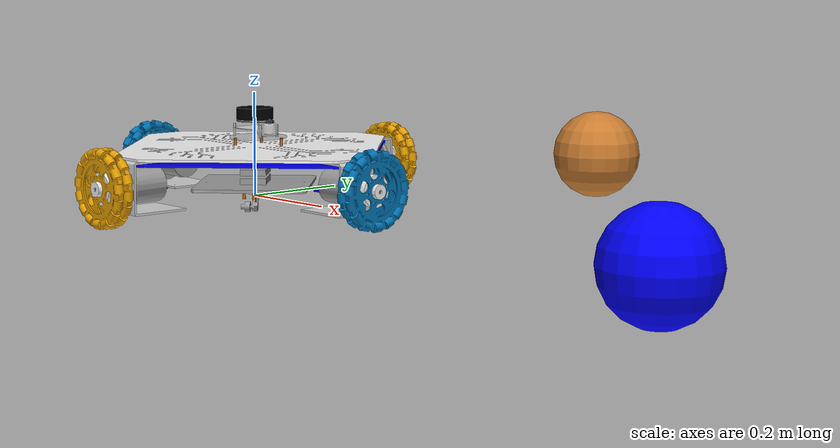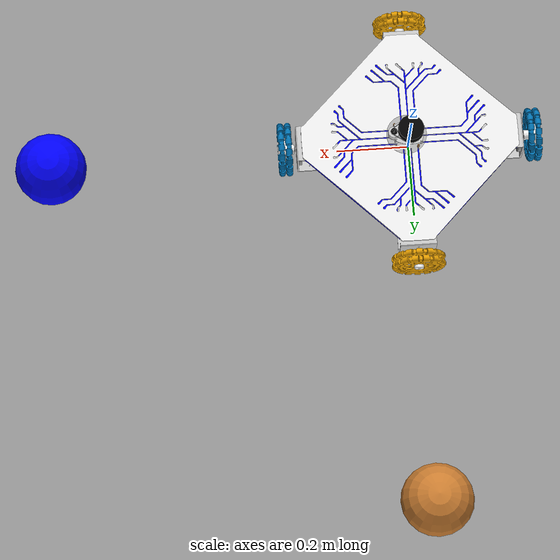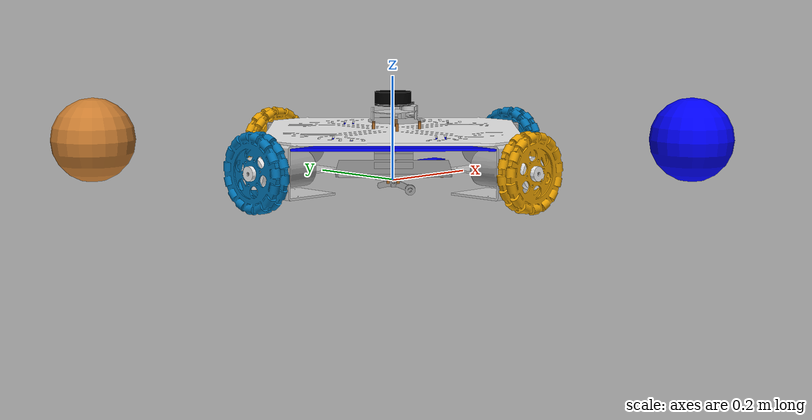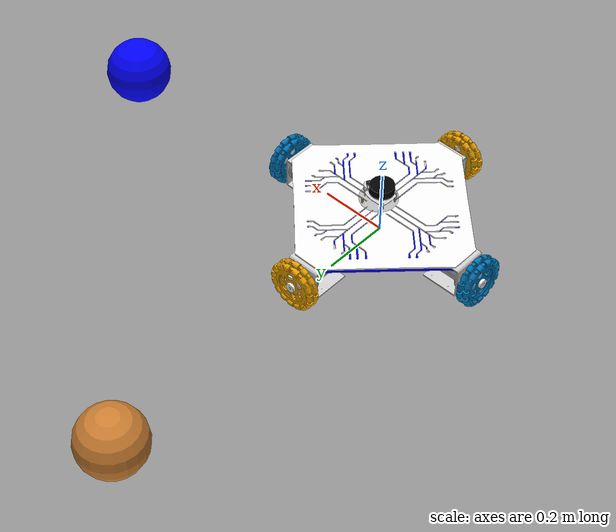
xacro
<?xml version="1.0"?>
<robot xmlns:xacro="http://www.ros.org/wiki/xacro" name="lidar_robot">
    <xacro:include filename="$(find lidar_robot)/xacro/materials.xacro"/>
    <xacro:property name="c_clamp_dist" value="0.31"/>

    <gazebo>
        <plugin name="object_controller" filename="libgazebo_ros_planar_move.so">
            <commandTopic>cmd_vel</commandTopic>
            <odometryTopic>odom</odometryTopic>
            <odometryFrame>odom</odometryFrame>
            <odometryRate>30.0</odometryRate>
            <robotBaseFrame>base_link</robotBaseFrame>
        </plugin>
    </gazebo>

    <xacro:macro name="stud" params="myname x y z parent">
        <link name="${myname}">
            <visual>
                <origin xyz="${x} ${y} ${z}" rpy="${pi/2} 0 0"/>
                <geometry>
                    <mesh filename="package://lidar_robot/models/stud.stl" scale="0.001 0.001 0.001"/>
                </geometry>
                <material name="bronze"/>
            </visual>
        </link>
        <joint name="${parent}_${myname}" type="fixed">
            <parent link="${parent}"/>
            <child link="${myname}"/>
        </joint>
    </xacro:macro>

    <xacro:macro name="wheel">
        <visual>
            <origin xyz="0.02 0 0" rpy="0 0 ${pi/2}"/>
            <geometry>
                <mesh filename="package://lidar_robot/models/wheel2.dae"/>
            </geometry>
        </visual>
        <inertial>
            <mass value="0.5"/>
            <inertia ixx="0.0" ixy="0.0" ixz="0.0" iyy="0.000001" iyz="0.0" izz="0.0"/>
        </inertial>
        <collision>
            <origin xyz="0.027 0 0.0" rpy="0 ${pi/2} 0"/>
            <geometry>
                <cylinder length="0.045" radius="0.08"/>
            </geometry>
        </collision>
    </xacro:macro>

    <!-- ======================================================= Base Link ====================================================================== -->
    <link name="base_link">
        <visual>
            <origin xyz="0.01 0 0" rpy="${pi/2} 0 0"/>
            <geometry>
                <mesh filename="package://lidar_robot/models/base.stl" scale="0.001 0.001 0.001"/>
            </geometry>
            <material name="transparent_acrylic"/>
        </visual>
        <inertial>
            <mass value="8"/>
            <inertia ixx="0.000231" ixy="0.0" ixz="0.0" iyy="0.000439" iyz="-0.000001" izz="0.999454"/>
        </inertial>
        <collision>
            <origin xyz="0 0 0.05" rpy="0 0 ${pi/4}"/>
            <geometry>
                <box size="0.52 0.52 0.11"/>
            </geometry>
        </collision>
        <collision>
            <origin xyz="0 0 0.07" rpy="0 0 0"/>
            <geometry>
                <cylinder length="0.205" radius=".07"/>
            </geometry>
        </collision>
    </link>

    <!-- =======================================================Wheel 1====================================================================== -->
    <link name="c_clamp_1">
        <visual>
            <origin xyz="${-c_clamp_dist} 0.05 0.09" rpy="${pi/2} 0 0"/>
            <geometry>
                <mesh filename="package://lidar_robot/models/c_clamp.stl" scale="0.001 0.001 0.001"/>
            </geometry>
            <material name="aluminium"/>
        </visual>
    </link>
    <joint name="base_c_clamp_1" type="fixed">
        <parent link="base_link"/>
        <child link="c_clamp_1"/>
    </joint>
    <link name="motor_1">
        <visual>
            <origin xyz="${-(c_clamp_dist-0.012)} 0 0.045" rpy="${pi/2} 0 ${pi/2}"/>
            <geometry>
                <mesh filename="package://lidar_robot/models/motor.stl" scale="0.001 0.001 0.001"/>
            </geometry>
            <material name="aluminium_dark"/>
        </visual>
    </link>
    <joint name="c_clamp_motor_1" type="fixed">
        <parent link="c_clamp_1"/>
        <child link="motor_1"/>
    </joint>
    <link name="shaft_1">
        <visual>
            <origin xyz="0 0 0" rpy="0 0 0"/>
            <geometry>
                <mesh filename="package://lidar_robot/models/motor_shaft.stl" scale="0.001 0.001 0.001"/>
            </geometry>
            <material name="plastic"/>
        </visual>
    </link>
    <joint name="motor_shaft_1" type="continuous">
        <parent link="base_link"/>
        <child link="shaft_1"/>
        <axis xyz="1 0 0"/>
        <origin xyz="${-(c_clamp_dist+0.01)} 0 0.045" rpy="0 0 ${pi}"/>
    </joint>
    <link name="wheel_1">
        <xacro:wheel/>
    </link>
    <joint name="shaft_wheel_1" type="fixed">
        <parent link="shaft_1"/>
        <child link="wheel_1"/>
    </joint>
    <!-- =======================================================Wheel 2====================================================================== -->
    <link name="c_clamp_2">
        <visual>
            <origin xyz="0.05 ${c_clamp_dist} 0.09" rpy="${pi/2} 0 -${pi/2}"/>
            <geometry>
                <mesh filename="package://lidar_robot/models/c_clamp.stl" scale="0.001 0.001 0.001"/>
            </geometry>
            <material name="aluminium"/>
        </visual>
    </link>
    <joint name="base_c_clamp_2" type="fixed">
        <parent link="base_link"/>
        <child link="c_clamp_2"/>
    </joint>
    <link name="motor_2">
        <visual>
            <origin xyz="0 ${(c_clamp_dist-0.012)} 0.045" rpy="${pi/2} -${pi} 0"/>
            <geometry>
                <mesh filename="package://lidar_robot/models/motor.stl" scale="0.001 0.001 0.001"/>
            </geometry>
            <material name="aluminium_dark"/>
        </visual>
    </link>
    <joint name="c_clamp_motor_2" type="fixed">
        <parent link="c_clamp_2"/>
        <child link="motor_2"/>
    </joint>
    <link name="shaft_2">
        <visual>
            <origin xyz="0 0 0" rpy="0 0 0"/>
            <geometry>
                <mesh filename="package://lidar_robot/models/motor_shaft.stl" scale="0.001 0.001 0.001"/>
            </geometry>
            <material name="plastic"/>
        </visual>
    </link>
    <joint name="motor_shaft_2" type="continuous">
        <parent link="base_link"/>
        <child link="shaft_2"/>
        <origin xyz="0 ${(c_clamp_dist+0.01)} 0.045" rpy="0 0 ${pi/2}"/>
    </joint>
    <link name="wheel_2">
        <xacro:wheel/>
    </link>
    <joint name="shaft_wheel_2" type="fixed">
        <parent link="shaft_2"/>
        <child link="wheel_2"/>
    </joint>
    <!-- =======================================================Wheel 3====================================================================== -->
    <link name="c_clamp_3">
        <visual>
            <origin xyz="${c_clamp_dist} -0.05 0.09" rpy="${pi/2} 0 ${pi}"/>
            <geometry>
                <mesh filename="package://lidar_robot/models/c_clamp.stl" scale="0.001 0.001 0.001"/>
            </geometry>
            <material name="aluminium"/>
        </visual>
    </link>
    <joint name="base_c_clamp_3" type="fixed">
        <parent link="base_link"/>
        <child link="c_clamp_3"/>
    </joint>
    <link name="motor_3">
        <visual>
            <origin xyz="${(c_clamp_dist-0.012)} 0 0.045" rpy="${pi/2} 0 -${pi/2}"/>
            <geometry>
                <mesh filename="package://lidar_robot/models/motor.stl" scale="0.001 0.001 0.001"/>
            </geometry>
            <material name="aluminium_dark"/>
        </visual>
    </link>
    <joint name="c_clamp_motor_3" type="fixed">
        <parent link="c_clamp_3"/>
        <child link="motor_3"/>
    </joint>
    <link name="shaft_3">
        <visual>
            <origin xyz="0 0 0" rpy="0 0 0"/>
            <geometry>
                <mesh filename="package://lidar_robot/models/motor_shaft.stl" scale="0.001 0.001 0.001"/>
            </geometry>
            <material name="plastic"/>
        </visual>
    </link>
    <joint name="motor_shaft_3" type="continuous">
        <parent link="base_link"/>
        <child link="shaft_3"/>
        <origin xyz="${(c_clamp_dist+0.01)} 0 0.045" rpy="0 0 0"/>
    </joint>
    <link name="wheel_3">
        <xacro:wheel/>
    </link>
    <joint name="shaft_wheel_3" type="fixed">
        <parent link="shaft_3"/>
        <child link="wheel_3"/>
    </joint>
    <!-- =======================================================Wheel 4====================================================================== -->
    <link name="c_clamp_4">
        <visual>
            <origin xyz="-0.05 ${-c_clamp_dist} 0.09" rpy="${pi/2} 0 ${pi/2}"/>
            <geometry>
                <mesh filename="package://lidar_robot/models/c_clamp.stl" scale="0.001 0.001 0.001"/>
            </geometry>
            <material name="aluminium"/>
        </visual>
    </link>
    <joint name="base_c_clamp_4" type="fixed">
        <parent link="base_link"/>
        <child link="c_clamp_4"/>
    </joint>
    <link name="motor_4">
        <visual>
            <origin xyz="0 ${-(c_clamp_dist-0.012)} 0.045" rpy="${pi/2} 0 ${pi}"/>
            <geometry>
                <mesh filename="package://lidar_robot/models/motor.stl" scale="0.001 0.001 0.001"/>
            </geometry>
            <material name="aluminium_dark"/>
        </visual>
    </link>
    <joint name="c_clamp_motor_4" type="fixed">
        <parent link="c_clamp_4"/>
        <child link="motor_4"/>
    </joint>
    <link name="shaft_4">
        <visual>
            <origin xyz="0 0 0" rpy="0 0 0"/>
            <geometry>
                <mesh filename="package://lidar_robot/models/motor_shaft.stl" scale="0.001 0.001 0.001"/>
            </geometry>
            <material name="plastic"/>
        </visual>
    </link>
    <joint name="motor_shaft_4" type="continuous">
        <parent link="base_link"/>
        <child link="shaft_4"/>
        <origin xyz="0 ${-(c_clamp_dist+0.01)} 0.045" rpy="0 0 ${-pi/2}"/>
    </joint>
    <link name="wheel_4">
        <xacro:wheel/>
    </link>
    <joint name="shaft_wheel_4" type="fixed">
        <parent link="shaft_4"/>
        <child link="wheel_4"/>
    </joint>
    <!-- ======================================================= Top Plate ====================================================================== -->
    <link name="top_plate">
        <visual>
            <origin xyz="0.01 0 0.0836" rpy="${pi/2} 0 0"/>
            <geometry>
                <mesh filename="package://lidar_robot/models/top_plate.stl" scale="0.001 0.001 0.001"/>
            </geometry>
            <material name="blue"/>
        </visual>
    </link>
    <joint name="base_link_top_plate" type="fixed">
        <parent link="base_link"/>
        <child link="top_plate"/>
    </joint>
    <!-- ======================================================= Circuit Plate ====================================================================== -->
    <link name="circuit_plate">
        <visual>
            <origin xyz="0 0 0.093" rpy="${pi/2} 0 ${-5*pi/4}"/>
            <geometry>
                <mesh filename="package://lidar_robot/models/circuit_plate.stl" scale="0.001 0.001 0.001"/>
            </geometry>
            <material name="plastic"/>
        </visual>
    </link>
    <joint name="base_link_circuit_plate" type="fixed">
        <parent link="top_plate"/>
        <child link="circuit_plate"/>
    </joint>
    <!-- ======================================================= feedback ====================================================================== -->
    <link name="feedback">
        <visual>
            <origin xyz="0.063 0.1 -0.06" rpy="${pi/2} 0 ${pi/4}"/>
            <geometry>
                <mesh filename="package://lidar_robot/models/feedback.stl" scale="0.001 0.001 0.001"/>
            </geometry>
            <material name="aluminium_dark"/>
        </visual>
    </link>
    <joint name="base_link_feedback" type="fixed">
        <parent link="base_link"/>
        <child link="feedback"/>
    </joint>

    <xacro:stud myname="s1" x="0.073" y="0.06" z="0.006" parent="feedback"/>
    <xacro:stud myname="s2" x="-0.073" y="0.06" z="0.006" parent="feedback"/>
    <xacro:stud myname="s3" x="0.073" y="-0.06" z="0.006" parent="feedback"/>
    <xacro:stud myname="s4" x="-0.073" y="-0.06" z="0.006" parent="feedback"/>

    <xacro:stud myname="s5" x="0.06" y="0.0735" z="0.006" parent="feedback"/>
    <xacro:stud myname="s6" x="-0.06" y="0.0735" z="0.006" parent="feedback"/>
    <xacro:stud myname="s7" x="0.06" y="-0.0735" z="0.006" parent="feedback"/>
    <xacro:stud myname="s8" x="-0.06" y="-0.0735" z="0.006" parent="feedback"/>

    <!-- ======================================================= lidar Base ====================================================================== -->
    <link name="lidar_base">
        <visual>
            <origin xyz="0.01 0 0.1134" rpy="${pi/2} 0 0"/>
            <geometry>
                <mesh filename="package://lidar_robot/models/lidar_base.stl" scale="0.001 0.001 0.001"/>
            </geometry>
            <material name="transparent_acrylic_dark"/>
        </visual>
    </link>
    <joint name="circuit_plate_lidar_base" type="fixed">
        <parent link="circuit_plate"/>
        <child link="lidar_base"/>
    </joint>

    <xacro:stud myname="s9" x="-0.021" y="0.0321" z="0.098" parent="lidar_base"/>
    <xacro:stud myname="s10" x="0.041" y="0.0321" z="0.098" parent="lidar_base"/>
    <xacro:stud myname="s11" x="0.041" y="-0.0321" z="0.098" parent="lidar_base"/>
    <xacro:stud myname="s12" x="-0.021" y="-0.0321" z="0.098" parent="lidar_base"/>

    <!-- ======================================================= RPlidar ====================================================================== -->
    <link name="lidar_bottom">
        <visual>
            <origin xyz="0.0 0 0.161" rpy="${pi/2} 0 0"/>
            <geometry>
                <mesh filename="package://lidar_robot/models/lidar_bottom.stl" scale="0.001 0.001 0.001"/>
            </geometry>
            <material name="aluminium"/>
        </visual>
    </link>
    <joint name="lidar_base_lidar_bottom" type="fixed">
        <parent link="lidar_base"/>
        <child link="lidar_bottom"/>
    </joint>
    <link name="lidar_up">
        <visual>
            <origin xyz="0.0 0 0.158" rpy="${pi/2} 0 0"/>
            <geometry>
                <mesh filename="package://lidar_robot/models/lidar_up.stl" scale="0.001 0.001 0.001"/>
            </geometry>
            <material name="black_plastic"/>
        </visual>
    </link>
    <joint name="lidar_bottom_lidar_up" type="fixed">
        <parent link="lidar_bottom"/>
        <child link="lidar_up"/>
    </joint>

    <link name="rplidar_frame">
        <visual>
            <geometry>
                <sphere radius="0.001"/>
            </geometry>
            <material name="blue"/>
        </visual>
    </link>
    <joint name="base_link_rplidar_frame" type="fixed">
        <origin xyz="0.0 0 0.16" rpy="0 0 0"/>
        <parent link="base_link"/>
        <child link="rplidar_frame"/>
    </joint>
    <gazebo reference="rplidar_frame">
        <sensor type="ray" name="rplidar_sensor">
            <pose>0 0 0 0 0 0</pose>
            <visualize>true</visualize>
            <update_rate>8</update_rate>
            <ray>
                <scan>
                    <horizontal>
                        <samples>360</samples>
                        <resolution>1</resolution>
                        <min_angle>0</min_angle>
                        <max_angle>${pi*2}</max_angle>
                    </horizontal>
                </scan>
                <range>
                    <min>0.2</min>
                    <max>6.0</max>
                    <resolution>0.5</resolution>
                </range>
                <noise>
                    <type>gaussian</type>
                    <mean>0.0</mean>
                    <stddev>0.01</stddev>
                </noise>
            </ray>
            <plugin name="gazebo_ros_rplidar_controller" filename="libgazebo_ros_laser.so">
                <topicName>/lidar_robot/scan</topicName>
                <frameName>/rplidar_frame</frameName>
            </plugin>
        </sensor>
    </gazebo>
    <link name="x">
        <visual>
            <origin xyz="1.0 0 0" rpy="0 0 0"/>
            <geometry>
                <sphere radius="0.1"/>
            </geometry>
            <material name="blue"/>
        </visual>
    </link>
    <joint name="base_link_x" type="fixed">
        <parent link="base_link"/>
        <child link="x"/>
    </joint>
    <link name="y">
        <visual>
            <origin xyz="0 1 0" rpy="0 0 0"/>
            <geometry>
                <sphere radius="0.1"/>
            </geometry>
            <material name="bronze"/>
        </visual>
    </link>
    <joint name="base_link_y" type="fixed">
        <parent link="base_link"/>
        <child link="y"/>
    </joint>
    <link name="imu">
        <visual>
            <origin xyz="0.16 0.05 0.02" rpy="0 0 0"/>
            <geometry>
                <box size="0.05 0.03 0.004"/>
            </geometry>
            <material name="blue"/>
        </visual>
    </link>
    <joint name="base_link_imu" type="fixed">
        <parent link="base_link"/>
        <child link="imu"/>
    </joint>
</robot>

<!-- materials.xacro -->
<robot>

    <material name="black">
        <color rgba="0.0 0.0 0.0 1.0"/>
    </material>

    <material name="green">
        <color rgba="0.0 0.8 0.0 1.0"/>
    </material>

    <material name="grey">
        <color rgba="0.2 0.2 0.2 1.0"/>
    </material>

    <material name="transparent_acrylic">
        <color rgba="0.8 0.8 0.8 0.4"/>
    </material>

    <material name="transparent_acrylic_dark">
        <color rgba="0.4 0.4 0.4 0.4"/>
    </material>

    <material name="aluminium">
        <color rgba="0.8 0.8 0.8 1"/>
    </material>

    <material name="aluminium_dark">
        <color rgba="0.6 0.6 0.6 1"/>
    </material>

    <material name="plastic">
        <color rgba="0.95 0.95 0.95 1"/>
    </material>

    <material name="black_plastic">
        <color rgba="0.0 0.0 0.0 1"/>
    </material>

    <material name="blue">
        <color rgba="0 0 1.0 1"/>
    </material>

    <material name="bronze">
        <color rgba="0.8039 0.498 0.196 1"/>
    </material>

    <material name="orange">
        <color rgba="${255/255} ${108/255} ${10/255} 1.0"/>
    </material>

    <material name="brown">
        <color rgba="${222/255} ${207/255} ${195/255} 1.0"/>
    </material>

    <material name="red">
        <color rgba="0.8 0.0 0.0 1.0"/>
    </material>

    <material name="white">
        <color rgba="1.0 1.0 1.0 1.0"/>
    </material>

</robot>
